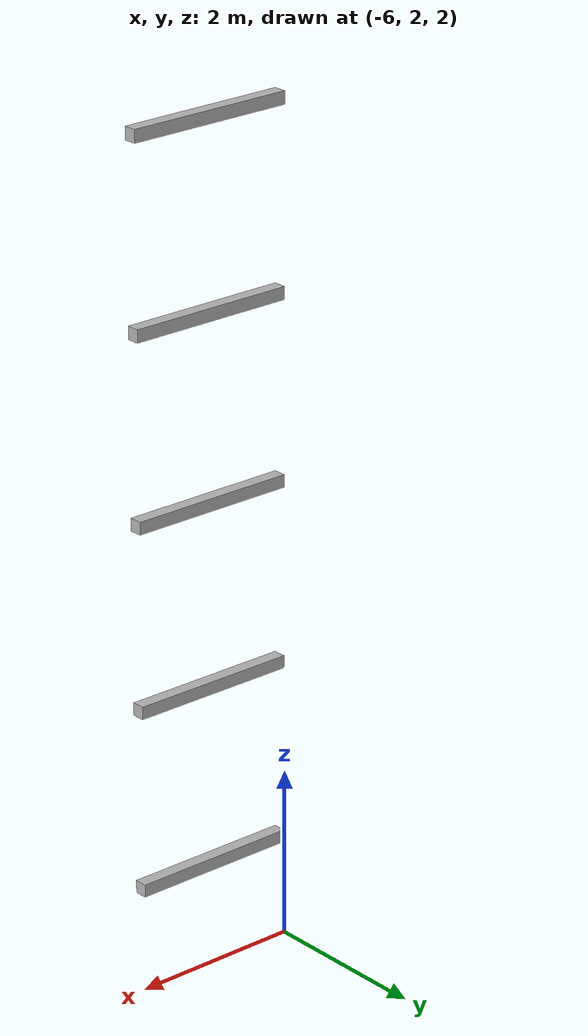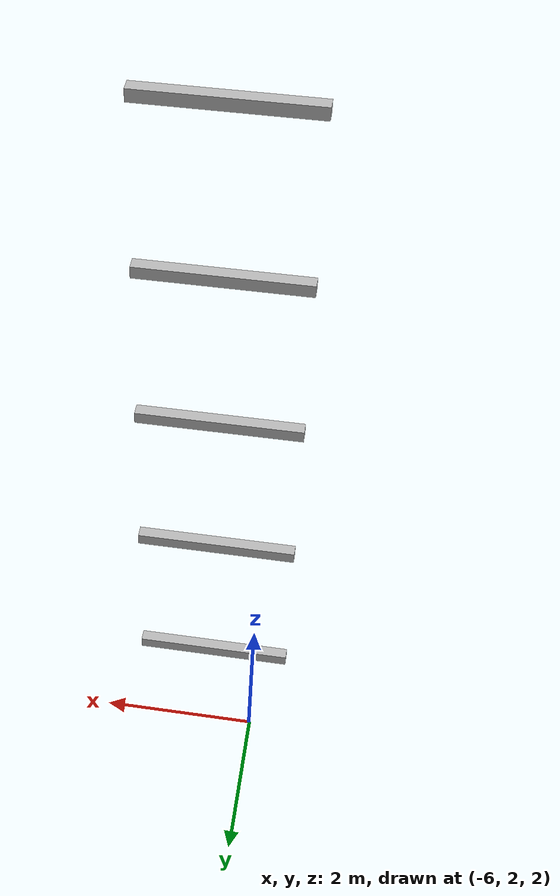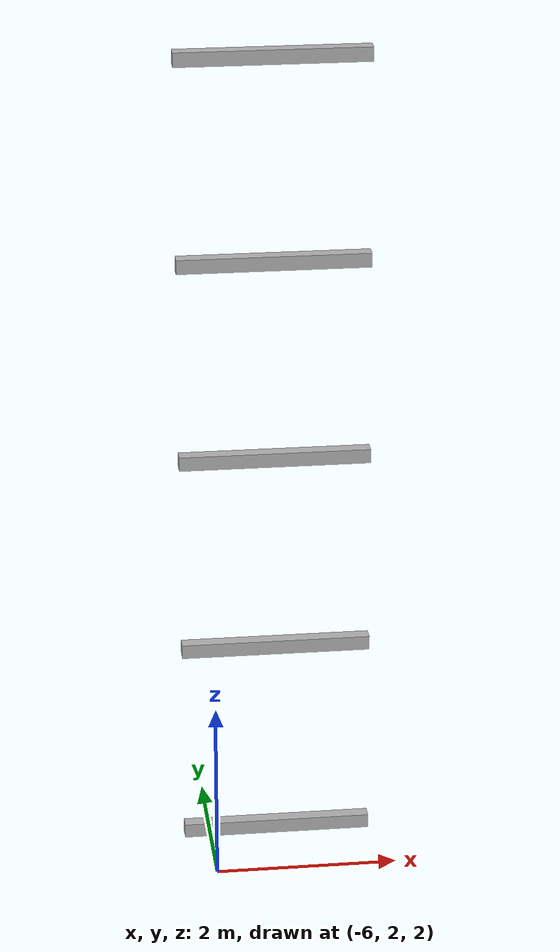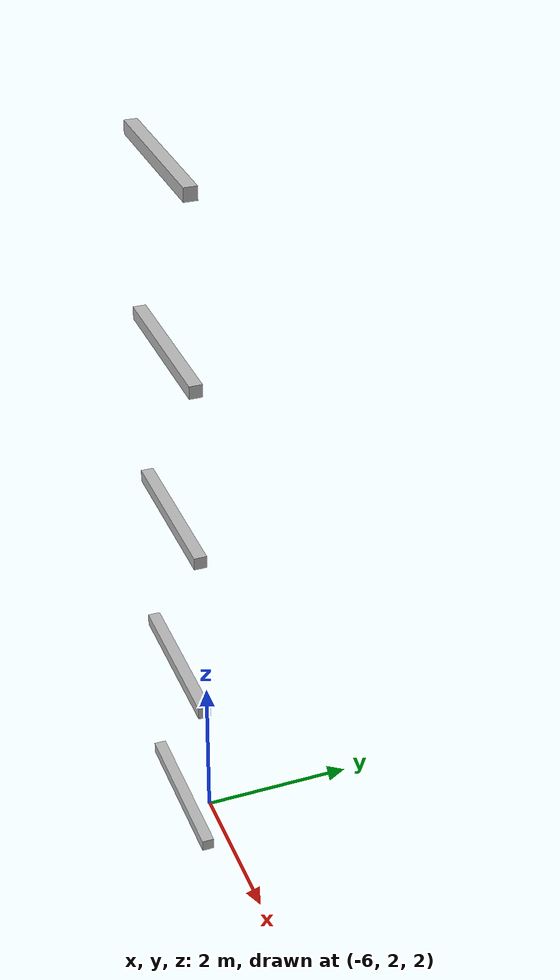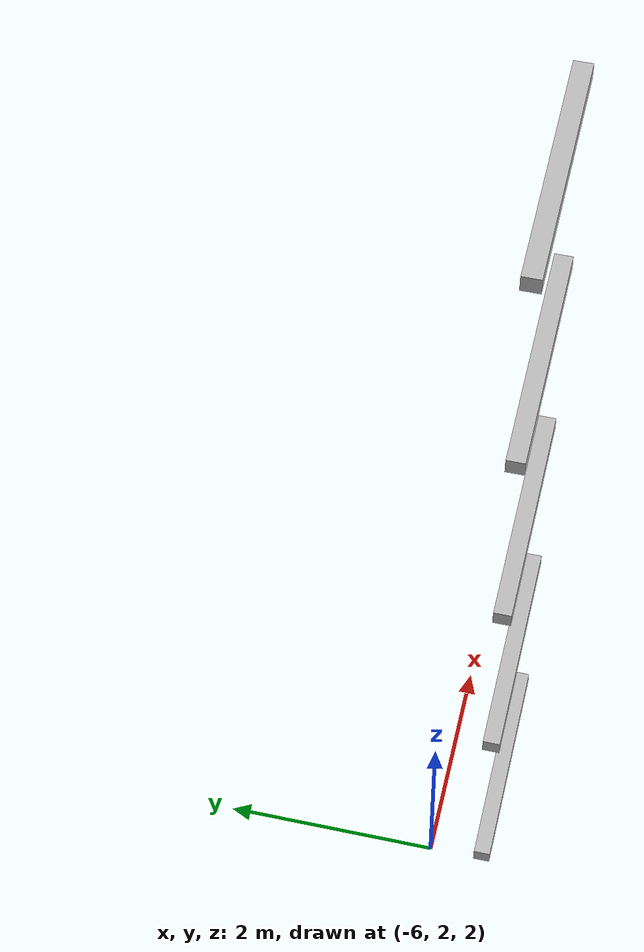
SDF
<sdf version="1.7">
 <world name="default">
  <model name="orthogonal_747_2.000.15_TS">
   <static>1</static>
   <link name="x_link_2_3_0">
    <inertial>
     <mass>1</mass>
     <inertia>
      <ixx>0.166667</ixx>
      <ixy>0</ixy>
      <ixz>0</ixz>
      <iyy>0.166667</iyy>
      <iyz>0</iyz>
      <izz>0.166667</izz>
     </inertia>
    </inertial>
    <pose>1.075 6.45 5.375 0 -0 0</pose>
    <visual name="visual_0">
     <laser_retro>2220</laser_retro>
     <geometry><box><size>2 1e-06 0.15</size></box></geometry>
     <material>
      <script><name>Gazebo/Grey</name><uri>file://media/materials/scripts/gazebo.material</uri></script>
      <shader type="pixel"><normal_map>__default__</normal_map></shader>
      <ambient>0.678 0.498 0.659 1</ambient>
      <diffuse>0.7 0.7 0.7 1</diffuse>
      <specular>0.01 0.01 0.01 1</specular>
      <emissive>0 0 0 1</emissive>
     </material>
     <pose>0 -0.075 0 0 -0 0</pose>
     <transparency>1</transparency>
    </visual>
    <visual name="visual_1">
     <laser_retro>2221</laser_retro>
     <geometry><box><size>2 1e-06 0.15</size></box></geometry>
     <material>
      <script><name>Gazebo/Grey</name><uri>file://media/materials/scripts/gazebo.material</uri></script>
      <shader type="pixel"><normal_map>__default__</normal_map></shader>
      <ambient>0.447 0.624 0.812 1</ambient>
      <diffuse>0.7 0.7 0.7 1</diffuse>
      <specular>0.01 0.01 0.01 1</specular>
      <emissive>0 0 0 1</emissive>
     </material>
     <pose>0 0.075 0 0 -0 0</pose>
     <transparency>1</transparency>
    </visual>
    <visual name="visual_2">
     <laser_retro>2222</laser_retro>
     <geometry><box><size>2 0.15 1e-06</size></box></geometry>
     <material>
      <script><name>Gazebo/Grey</name><uri>file://media/materials/scripts/gazebo.material</uri></script>
      <shader type="pixel"><normal_map>__default__</normal_map></shader>
      <ambient>0.988 0.686 0.243 1</ambient>
      <diffuse>0.7 0.7 0.7 1</diffuse>
      <specular>0.01 0.01 0.01 1</specular>
      <emissive>0 0 0 1</emissive>
     </material>
     <pose>0 0 -0.075 0 -0 0</pose>
     <transparency>1</transparency>
    </visual>
    <visual name="visual_3">
     <laser_retro>2223</laser_retro>
     <geometry><box><size>1e-06 0.15 0.15</size></box></geometry>
     <material>
      <script><name>Gazebo/Grey</name><uri>file://media/materials/scripts/gazebo.material</uri></script>
      <shader type="pixel"><normal_map>__default__</normal_map></shader>
      <ambient>0.988 0.914 0.31 1</ambient>
      <diffuse>0.7 0.7 0.7 1</diffuse>
      <specular>0.01 0.01 0.01 1</specular>
      <emissive>0 0 0 1</emissive>
     </material>
     <pose>1 0 0 0 -0 0</pose>
     <transparency>1</transparency>
    </visual>
    <visual name="visual_4">
     <laser_retro>2224</laser_retro>
     <geometry><box><size>2 0.15 1e-06</size></box></geometry>
     <material>
      <script><name>Gazebo/Grey</name><uri>file://media/materials/scripts/gazebo.material</uri></script>
      <shader type="pixel"><normal_map>__default__</normal_map></shader>
      <ambient>0.937 0.161 0.161 1</ambient>
      <diffuse>0.7 0.7 0.7 1</diffuse>
      <specular>0.01 0.01 0.01 1</specular>
      <emissive>0 0 0 1</emissive>
     </material>
     <pose>0 0 0.075 0 -0 0</pose>
     <transparency>1</transparency>
    </visual>
    <visual name="visual_5">
     <laser_retro>2225</laser_retro>
     <geometry><box><size>1e-06 0.15 0.15</size></box></geometry>
     <material>
      <script><name>Gazebo/Grey</name><uri>file://media/materials/scripts/gazebo.material</uri></script>
      <shader type="pixel"><normal_map>__default__</normal_map></shader>
      <ambient>0.541 0.886 0.204 1</ambient>
      <diffuse>0.7 0.7 0.7 1</diffuse>
      <specular>0.01 0.01 0.01 1</specular>
      <emissive>0 0 0 1</emissive>
     </material>
     <pose>-1 0 0 0 -0 0</pose>
     <transparency>1</transparency>
    </visual>
    <visual name="visual_texture">
     <geometry><box><size>1.9998 0.149985 0.149985</size></box></geometry>
     <material>
      <script>
       <uri>model://BASE_MODELS/simple_block_v2_textured/materials/scripts</uri>
       <uri>model://BASE_MODELS/simple_block_v2_textured/materials/textures</uri>
       <name>metal</name>
      </script>
     </material>
     <laser_retro>2226</laser_retro>
    </visual>
    <collision name="collision">
     <geometry><box><size>2 0.15 0.15</size></box></geometry>
     <surface>
      <friction>
       <ode><mu>1</mu><mu2>1</mu2><fdir1>0 0 0</fdir1><slip1>0</slip1><slip2>0</slip2></ode>
       <torsional>
        <coefficient>1</coefficient>
        <patch_radius>0</patch_radius>
        <surface_radius>0</surface_radius>
        <use_patch_radius>1</use_patch_radius>
        <ode><slip>0</slip></ode>
       </torsional>
      </friction>
      <bounce><restitution_coefficient>0</restitution_coefficient><threshold>1e+06</threshold></bounce>
      <contact>
       <collide_without_contact>0</collide_without_contact>
       <collide_without_contact_bitmask>1</collide_without_contact_bitmask>
       <collide_bitmask>1</collide_bitmask>
       <ode>
        <soft_cfm>0</soft_cfm>
        <soft_erp>0.2</soft_erp>
        <kp>1e+13</kp>
        <kd>1</kd>
        <max_vel>0.01</max_vel>
        <min_depth>0</min_depth>
       </ode>
       <bullet>
        <split_impulse>1</split_impulse>
        <split_impulse_penetration_threshold>-0.01</split_impulse_penetration_threshold>
        <soft_cfm>0</soft_cfm>
        <soft_erp>0.2</soft_erp>
        <kp>1e+13</kp>
        <kd>1</kd>
       </bullet>
      </contact>
     </surface>
    </collision>
   </link>
   <link name="x_link_3_3_0">
    <inertial>
     <mass>1</mass>
     <inertia>
      <ixx>0.166667</ixx>
      <ixy>0</ixy>
      <ixz>0</ixz>
      <iyy>0.166667</iyy>
      <iyz>0</iyz>
      <izz>0.166667</izz>
     </inertia>
    </inertial>
    <pose>1.075 6.45 7.525 0 -0 0</pose>
    <visual name="visual_0">
     <laser_retro>3123</laser_retro>
     <geometry><box><size>2 1e-06 0.15</size></box></geometry>
     <material>
      <script><name>Gazebo/Grey</name><uri>file://media/materials/scripts/gazebo.material</uri></script>
      <shader type="pixel"><normal_map>__default__</normal_map></shader>
      <ambient>0.678 0.498 0.659 1</ambient>
      <diffuse>0.7 0.7 0.7 1</diffuse>
      <specular>0.01 0.01 0.01 1</specular>
      <emissive>0 0 0 1</emissive>
     </material>
     <pose>0 -0.075 0 0 -0 0</pose>
     <transparency>1</transparency>
    </visual>
    <visual name="visual_1">
     <laser_retro>3124</laser_retro>
     <geometry><box><size>2 1e-06 0.15</size></box></geometry>
     <material>
      <script><name>Gazebo/Grey</name><uri>file://media/materials/scripts/gazebo.material</uri></script>
      <shader type="pixel"><normal_map>__default__</normal_map></shader>
      <ambient>0.447 0.624 0.812 1</ambient>
      <diffuse>0.7 0.7 0.7 1</diffuse>
      <specular>0.01 0.01 0.01 1</specular>
      <emissive>0 0 0 1</emissive>
     </material>
     <pose>0 0.075 0 0 -0 0</pose>
     <transparency>1</transparency>
    </visual>
    <visual name="visual_2">
     <laser_retro>3125</laser_retro>
     <geometry><box><size>2 0.15 1e-06</size></box></geometry>
     <material>
      <script><name>Gazebo/Grey</name><uri>file://media/materials/scripts/gazebo.material</uri></script>
      <shader type="pixel"><normal_map>__default__</normal_map></shader>
      <ambient>0.988 0.686 0.243 1</ambient>
      <diffuse>0.7 0.7 0.7 1</diffuse>
      <specular>0.01 0.01 0.01 1</specular>
      <emissive>0 0 0 1</emissive>
     </material>
     <pose>0 0 -0.075 0 -0 0</pose>
     <transparency>1</transparency>
    </visual>
    <visual name="visual_3">
     <laser_retro>3126</laser_retro>
     <geometry><box><size>1e-06 0.15 0.15</size></box></geometry>
     <material>
      <script><name>Gazebo/Grey</name><uri>file://media/materials/scripts/gazebo.material</uri></script>
      <shader type="pixel"><normal_map>__default__</normal_map></shader>
      <ambient>0.988 0.914 0.31 1</ambient>
      <diffuse>0.7 0.7 0.7 1</diffuse>
      <specular>0.01 0.01 0.01 1</specular>
      <emissive>0 0 0 1</emissive>
     </material>
     <pose>1 0 0 0 -0 0</pose>
     <transparency>1</transparency>
    </visual>
    <visual name="visual_4">
     <laser_retro>3127</laser_retro>
     <geometry><box><size>2 0.15 1e-06</size></box></geometry>
     <material>
      <script><name>Gazebo/Grey</name><uri>file://media/materials/scripts/gazebo.material</uri></script>
      <shader type="pixel"><normal_map>__default__</normal_map></shader>
      <ambient>0.937 0.161 0.161 1</ambient>
      <diffuse>0.7 0.7 0.7 1</diffuse>
      <specular>0.01 0.01 0.01 1</specular>
      <emissive>0 0 0 1</emissive>
     </material>
     <pose>0 0 0.075 0 -0 0</pose>
     <transparency>1</transparency>
    </visual>
    <visual name="visual_5">
     <laser_retro>3128</laser_retro>
     <geometry><box><size>1e-06 0.15 0.15</size></box></geometry>
     <material>
      <script><name>Gazebo/Grey</name><uri>file://media/materials/scripts/gazebo.material</uri></script>
      <shader type="pixel"><normal_map>__default__</normal_map></shader>
      <ambient>0.541 0.886 0.204 1</ambient>
      <diffuse>0.7 0.7 0.7 1</diffuse>
      <specular>0.01 0.01 0.01 1</specular>
      <emissive>0 0 0 1</emissive>
     </material>
     <pose>-1 0 0 0 -0 0</pose>
     <transparency>1</transparency>
    </visual>
    <visual name="visual_texture">
     <geometry><box><size>1.9998 0.149985 0.149985</size></box></geometry>
     <material>
      <script>
       <uri>model://BASE_MODELS/simple_block_v2_textured/materials/scripts</uri>
       <uri>model://BASE_MODELS/simple_block_v2_textured/materials/textures</uri>
       <name>metal</name>
      </script>
     </material>
     <laser_retro>3129</laser_retro>
    </visual>
    <collision name="collision">
     <geometry><box><size>2 0.15 0.15</size></box></geometry>
     <surface>
      <friction>
       <ode><mu>1</mu><mu2>1</mu2><fdir1>0 0 0</fdir1><slip1>0</slip1><slip2>0</slip2></ode>
       <torsional>
        <coefficient>1</coefficient>
        <patch_radius>0</patch_radius>
        <surface_radius>0</surface_radius>
        <use_patch_radius>1</use_patch_radius>
        <ode><slip>0</slip></ode>
       </torsional>
      </friction>
      <bounce><restitution_coefficient>0</restitution_coefficient><threshold>1e+06</threshold></bounce>
      <contact>
       <collide_without_contact>0</collide_without_contact>
       <collide_without_contact_bitmask>1</collide_without_contact_bitmask>
       <collide_bitmask>1</collide_bitmask>
       <ode>
        <soft_cfm>0</soft_cfm>
        <soft_erp>0.2</soft_erp>
        <kp>1e+13</kp>
        <kd>1</kd>
        <max_vel>0.01</max_vel>
        <min_depth>0</min_depth>
       </ode>
       <bullet>
        <split_impulse>1</split_impulse>
        <split_impulse_penetration_threshold>-0.01</split_impulse_penetration_threshold>
        <soft_cfm>0</soft_cfm>
        <soft_erp>0.2</soft_erp>
        <kp>1e+13</kp>
        <kd>1</kd>
       </bullet>
      </contact>
     </surface>
    </collision>
   </link>
   <link name="x_link_4_3_0">
    <inertial>
     <mass>1</mass>
     <inertia>
      <ixx>0.166667</ixx>
      <ixy>0</ixy>
      <ixz>0</ixz>
      <iyy>0.166667</iyy>
      <iyz>0</iyz>
      <izz>0.166667</izz>
     </inertia>
    </inertial>
    <pose>1.075 6.45 9.675 0 -0 0</pose>
    <visual name="visual_0">
     <laser_retro>4026</laser_retro>
     <geometry><box><size>2 1e-06 0.15</size></box></geometry>
     <material>
      <script><name>Gazebo/Grey</name><uri>file://media/materials/scripts/gazebo.material</uri></script>
      <shader type="pixel"><normal_map>__default__</normal_map></shader>
      <ambient>0.678 0.498 0.659 1</ambient>
      <diffuse>0.7 0.7 0.7 1</diffuse>
      <specular>0.01 0.01 0.01 1</specular>
      <emissive>0 0 0 1</emissive>
     </material>
     <pose>0 -0.075 0 0 -0 0</pose>
     <transparency>1</transparency>
    </visual>
    <visual name="visual_1">
     <laser_retro>4027</laser_retro>
     <geometry><box><size>2 1e-06 0.15</size></box></geometry>
     <material>
      <script><name>Gazebo/Grey</name><uri>file://media/materials/scripts/gazebo.material</uri></script>
      <shader type="pixel"><normal_map>__default__</normal_map></shader>
      <ambient>0.447 0.624 0.812 1</ambient>
      <diffuse>0.7 0.7 0.7 1</diffuse>
      <specular>0.01 0.01 0.01 1</specular>
      <emissive>0 0 0 1</emissive>
     </material>
     <pose>0 0.075 0 0 -0 0</pose>
     <transparency>1</transparency>
    </visual>
    <visual name="visual_2">
     <laser_retro>4028</laser_retro>
     <geometry><box><size>2 0.15 1e-06</size></box></geometry>
     <material>
      <script><name>Gazebo/Grey</name><uri>file://media/materials/scripts/gazebo.material</uri></script>
      <shader type="pixel"><normal_map>__default__</normal_map></shader>
      <ambient>0.988 0.686 0.243 1</ambient>
      <diffuse>0.7 0.7 0.7 1</diffuse>
      <specular>0.01 0.01 0.01 1</specular>
      <emissive>0 0 0 1</emissive>
     </material>
     <pose>0 0 -0.075 0 -0 0</pose>
     <transparency>1</transparency>
    </visual>
    <visual name="visual_3">
     <laser_retro>4029</laser_retro>
     <geometry><box><size>1e-06 0.15 0.15</size></box></geometry>
     <material>
      <script><name>Gazebo/Grey</name><uri>file://media/materials/scripts/gazebo.material</uri></script>
      <shader type="pixel"><normal_map>__default__</normal_map></shader>
      <ambient>0.988 0.914 0.31 1</ambient>
      <diffuse>0.7 0.7 0.7 1</diffuse>
      <specular>0.01 0.01 0.01 1</specular>
      <emissive>0 0 0 1</emissive>
     </material>
     <pose>1 0 0 0 -0 0</pose>
     <transparency>1</transparency>
    </visual>
    <visual name="visual_4">
     <laser_retro>4030</laser_retro>
     <geometry><box><size>2 0.15 1e-06</size></box></geometry>
     <material>
      <script><name>Gazebo/Grey</name><uri>file://media/materials/scripts/gazebo.material</uri></script>
      <shader type="pixel"><normal_map>__default__</normal_map></shader>
      <ambient>0.937 0.161 0.161 1</ambient>
      <diffuse>0.7 0.7 0.7 1</diffuse>
      <specular>0.01 0.01 0.01 1</specular>
      <emissive>0 0 0 1</emissive>
     </material>
     <pose>0 0 0.075 0 -0 0</pose>
     <transparency>1</transparency>
    </visual>
    <visual name="visual_5">
     <laser_retro>4031</laser_retro>
     <geometry><box><size>1e-06 0.15 0.15</size></box></geometry>
     <material>
      <script><name>Gazebo/Grey</name><uri>file://media/materials/scripts/gazebo.material</uri></script>
      <shader type="pixel"><normal_map>__default__</normal_map></shader>
      <ambient>0.541 0.886 0.204 1</ambient>
      <diffuse>0.7 0.7 0.7 1</diffuse>
      <specular>0.01 0.01 0.01 1</specular>
      <emissive>0 0 0 1</emissive>
     </material>
     <pose>-1 0 0 0 -0 0</pose>
     <transparency>1</transparency>
    </visual>
    <visual name="visual_texture">
     <geometry><box><size>1.9998 0.149985 0.149985</size></box></geometry>
     <material>
      <script>
       <uri>model://BASE_MODELS/simple_block_v2_textured/materials/scripts</uri>
       <uri>model://BASE_MODELS/simple_block_v2_textured/materials/textures</uri>
       <name>metal</name>
      </script>
     </material>
     <laser_retro>4032</laser_retro>
    </visual>
    <collision name="collision">
     <geometry><box><size>2 0.15 0.15</size></box></geometry>
     <surface>
      <friction>
       <ode><mu>1</mu><mu2>1</mu2><fdir1>0 0 0</fdir1><slip1>0</slip1><slip2>0</slip2></ode>
       <torsional>
        <coefficient>1</coefficient>
        <patch_radius>0</patch_radius>
        <surface_radius>0</surface_radius>
        <use_patch_radius>1</use_patch_radius>
        <ode><slip>0</slip></ode>
       </torsional>
      </friction>
      <bounce><restitution_coefficient>0</restitution_coefficient><threshold>1e+06</threshold></bounce>
      <contact>
       <collide_without_contact>0</collide_without_contact>
       <collide_without_contact_bitmask>1</collide_without_contact_bitmask>
       <collide_bitmask>1</collide_bitmask>
       <ode>
        <soft_cfm>0</soft_cfm>
        <soft_erp>0.2</soft_erp>
        <kp>1e+13</kp>
        <kd>1</kd>
        <max_vel>0.01</max_vel>
        <min_depth>0</min_depth>
       </ode>
       <bullet>
        <split_impulse>1</split_impulse>
        <split_impulse_penetration_threshold>-0.01</split_impulse_penetration_threshold>
        <soft_cfm>0</soft_cfm>
        <soft_erp>0.2</soft_erp>
        <kp>1e+13</kp>
        <kd>1</kd>
       </bullet>
      </contact>
     </surface>
    </collision>
   </link>
   <link name="x_link_5_3_0">
    <inertial>
     <mass>1</mass>
     <inertia>
      <ixx>0.166667</ixx>
      <ixy>0</ixy>
      <ixz>0</ixz>
      <iyy>0.166667</iyy>
      <iyz>0</iyz>
      <izz>0.166667</izz>
     </inertia>
    </inertial>
    <pose>1.075 6.45 11.825 0 -0 0</pose>
    <visual name="visual_0">
     <laser_retro>4929</laser_retro>
     <geometry><box><size>2 1e-06 0.15</size></box></geometry>
     <material>
      <script><name>Gazebo/Grey</name><uri>file://media/materials/scripts/gazebo.material</uri></script>
      <shader type="pixel"><normal_map>__default__</normal_map></shader>
      <ambient>0.678 0.498 0.659 1</ambient>
      <diffuse>0.7 0.7 0.7 1</diffuse>
      <specular>0.01 0.01 0.01 1</specular>
      <emissive>0 0 0 1</emissive>
     </material>
     <pose>0 -0.075 0 0 -0 0</pose>
     <transparency>1</transparency>
    </visual>
    <visual name="visual_1">
     <laser_retro>4930</laser_retro>
     <geometry><box><size>2 1e-06 0.15</size></box></geometry>
     <material>
      <script><name>Gazebo/Grey</name><uri>file://media/materials/scripts/gazebo.material</uri></script>
      <shader type="pixel"><normal_map>__default__</normal_map></shader>
      <ambient>0.447 0.624 0.812 1</ambient>
      <diffuse>0.7 0.7 0.7 1</diffuse>
      <specular>0.01 0.01 0.01 1</specular>
      <emissive>0 0 0 1</emissive>
     </material>
     <pose>0 0.075 0 0 -0 0</pose>
     <transparency>1</transparency>
    </visual>
    <visual name="visual_2">
     <laser_retro>4931</laser_retro>
     <geometry><box><size>2 0.15 1e-06</size></box></geometry>
     <material>
      <script><name>Gazebo/Grey</name><uri>file://media/materials/scripts/gazebo.material</uri></script>
      <shader type="pixel"><normal_map>__default__</normal_map></shader>
      <ambient>0.988 0.686 0.243 1</ambient>
      <diffuse>0.7 0.7 0.7 1</diffuse>
      <specular>0.01 0.01 0.01 1</specular>
      <emissive>0 0 0 1</emissive>
     </material>
     <pose>0 0 -0.075 0 -0 0</pose>
     <transparency>1</transparency>
    </visual>
    <visual name="visual_3">
     <laser_retro>4932</laser_retro>
     <geometry><box><size>1e-06 0.15 0.15</size></box></geometry>
     <material>
      <script><name>Gazebo/Grey</name><uri>file://media/materials/scripts/gazebo.material</uri></script>
      <shader type="pixel"><normal_map>__default__</normal_map></shader>
      <ambient>0.988 0.914 0.31 1</ambient>
      <diffuse>0.7 0.7 0.7 1</diffuse>
      <specular>0.01 0.01 0.01 1</specular>
      <emissive>0 0 0 1</emissive>
     </material>
     <pose>1 0 0 0 -0 0</pose>
     <transparency>1</transparency>
    </visual>
    <visual name="visual_4">
     <laser_retro>4933</laser_retro>
     <geometry><box><size>2 0.15 1e-06</size></box></geometry>
     <material>
      <script><name>Gazebo/Grey</name><uri>file://media/materials/scripts/gazebo.material</uri></script>
      <shader type="pixel"><normal_map>__default__</normal_map></shader>
      <ambient>0.937 0.161 0.161 1</ambient>
      <diffuse>0.7 0.7 0.7 1</diffuse>
      <specular>0.01 0.01 0.01 1</specular>
      <emissive>0 0 0 1</emissive>
     </material>
     <pose>0 0 0.075 0 -0 0</pose>
     <transparency>1</transparency>
    </visual>
    <visual name="visual_5">
     <laser_retro>4934</laser_retro>
     <geometry><box><size>1e-06 0.15 0.15</size></box></geometry>
     <material>
      <script><name>Gazebo/Grey</name><uri>file://media/materials/scripts/gazebo.material</uri></script>
      <shader type="pixel"><normal_map>__default__</normal_map></shader>
      <ambient>0.541 0.886 0.204 1</ambient>
      <diffuse>0.7 0.7 0.7 1</diffuse>
      <specular>0.01 0.01 0.01 1</specular>
      <emissive>0 0 0 1</emissive>
     </material>
     <pose>-1 0 0 0 -0 0</pose>
     <transparency>1</transparency>
    </visual>
    <visual name="visual_texture">
     <geometry><box><size>1.9998 0.149985 0.149985</size></box></geometry>
     <material>
      <script>
       <uri>model://BASE_MODELS/simple_block_v2_textured/materials/scripts</uri>
       <uri>model://BASE_MODELS/simple_block_v2_textured/materials/textures</uri>
       <name>metal</name>
      </script>
     </material>
     <laser_retro>4935</laser_retro>
    </visual>
    <collision name="collision">
     <geometry><box><size>2 0.15 0.15</size></box></geometry>
     <surface>
      <friction>
       <ode><mu>1</mu><mu2>1</mu2><fdir1>0 0 0</fdir1><slip1>0</slip1><slip2>0</slip2></ode>
       <torsional>
        <coefficient>1</coefficient>
        <patch_radius>0</patch_radius>
        <surface_radius>0</surface_radius>
        <use_patch_radius>1</use_patch_radius>
        <ode><slip>0</slip></ode>
       </torsional>
      </friction>
      <bounce><restitution_coefficient>0</restitution_coefficient><threshold>1e+06</threshold></bounce>
      <contact>
       <collide_without_contact>0</collide_without_contact>
       <collide_without_contact_bitmask>1</collide_without_contact_bitmask>
       <collide_bitmask>1</collide_bitmask>
       <ode>
        <soft_cfm>0</soft_cfm>
        <soft_erp>0.2</soft_erp>
        <kp>1e+13</kp>
        <kd>1</kd>
        <max_vel>0.01</max_vel>
        <min_depth>0</min_depth>
       </ode>
       <bullet>
        <split_impulse>1</split_impulse>
        <split_impulse_penetration_threshold>-0.01</split_impulse_penetration_threshold>
        <soft_cfm>0</soft_cfm>
        <soft_erp>0.2</soft_erp>
        <kp>1e+13</kp>
        <kd>1</kd>
       </bullet>
      </contact>
     </surface>
    </collision>
   </link>
   <link name="x_link_6_3_0">
    <inertial>
     <mass>1</mass>
     <inertia>
      <ixx>0.166667</ixx>
      <ixy>0</ixy>
      <ixz>0</ixz>
      <iyy>0.166667</iyy>
      <iyz>0</iyz>
      <izz>0.166667</izz>
     </inertia>
    </inertial>
    <pose>1.075 6.45 13.975 0 -0 0</pose>
    <visual name="visual_0">
     <laser_retro>5916</laser_retro>
     <geometry><box><size>2 1e-06 0.15</size></box></geometry>
     <material>
      <script><name>Gazebo/Grey</name><uri>file://media/materials/scripts/gazebo.material</uri></script>
      <shader type="pixel"><normal_map>__default__</normal_map></shader>
      <ambient>0.678 0.498 0.659 1</ambient>
      <diffuse>0.7 0.7 0.7 1</diffuse>
      <specular>0.01 0.01 0.01 1</specular>
      <emissive>0 0 0 1</emissive>
     </material>
     <pose>0 -0.075 0 0 -0 0</pose>
     <transparency>1</transparency>
    </visual>
    <visual name="visual_1">
     <laser_retro>5917</laser_retro>
     <geometry><box><size>2 1e-06 0.15</size></box></geometry>
     <material>
      <script><name>Gazebo/Grey</name><uri>file://media/materials/scripts/gazebo.material</uri></script>
      <shader type="pixel"><normal_map>__default__</normal_map></shader>
      <ambient>0.447 0.624 0.812 1</ambient>
      <diffuse>0.7 0.7 0.7 1</diffuse>
      <specular>0.01 0.01 0.01 1</specular>
      <emissive>0 0 0 1</emissive>
     </material>
     <pose>0 0.075 0 0 -0 0</pose>
     <transparency>1</transparency>
    </visual>
    <visual name="visual_2">
     <laser_retro>5918</laser_retro>
     <geometry><box><size>2 0.15 1e-06</size></box></geometry>
     <material>
      <script><name>Gazebo/Grey</name><uri>file://media/materials/scripts/gazebo.material</uri></script>
      <shader type="pixel"><normal_map>__default__</normal_map></shader>
      <ambient>0.988 0.686 0.243 1</ambient>
      <diffuse>0.7 0.7 0.7 1</diffuse>
      <specular>0.01 0.01 0.01 1</specular>
      <emissive>0 0 0 1</emissive>
     </material>
     <pose>0 0 -0.075 0 -0 0</pose>
     <transparency>1</transparency>
    </visual>
    <visual name="visual_3">
     <laser_retro>5919</laser_retro>
     <geometry><box><size>1e-06 0.15 0.15</size></box></geometry>
     <material>
      <script><name>Gazebo/Grey</name><uri>file://media/materials/scripts/gazebo.material</uri></script>
      <shader type="pixel"><normal_map>__default__</normal_map></shader>
      <ambient>0.988 0.914 0.31 1</ambient>
      <diffuse>0.7 0.7 0.7 1</diffuse>
      <specular>0.01 0.01 0.01 1</specular>
      <emissive>0 0 0 1</emissive>
     </material>
     <pose>1 0 0 0 -0 0</pose>
     <transparency>1</transparency>
    </visual>
    <visual name="visual_4">
     <laser_retro>5920</laser_retro>
     <geometry><box><size>2 0.15 1e-06</size></box></geometry>
     <material>
      <script><name>Gazebo/Grey</name><uri>file://media/materials/scripts/gazebo.material</uri></script>
      <shader type="pixel"><normal_map>__default__</normal_map></shader>
      <ambient>0.937 0.161 0.161 1</ambient>
      <diffuse>0.7 0.7 0.7 1</diffuse>
      <specular>0.01 0.01 0.01 1</specular>
      <emissive>0 0 0 1</emissive>
     </material>
     <pose>0 0 0.075 0 -0 0</pose>
     <transparency>1</transparency>
    </visual>
    <visual name="visual_5">
     <laser_retro>5921</laser_retro>
     <geometry><box><size>1e-06 0.15 0.15</size></box></geometry>
     <material>
      <script><name>Gazebo/Grey</name><uri>file://media/materials/scripts/gazebo.material</uri></script>
      <shader type="pixel"><normal_map>__default__</normal_map></shader>
      <ambient>0.541 0.886 0.204 1</ambient>
      <diffuse>0.7 0.7 0.7 1</diffuse>
      <specular>0.01 0.01 0.01 1</specular>
      <emissive>0 0 0 1</emissive>
     </material>
     <pose>-1 0 0 0 -0 0</pose>
     <transparency>1</transparency>
    </visual>
    <visual name="visual_texture">
     <geometry><box><size>1.9998 0.149985 0.149985</size></box></geometry>
     <material>
      <script>
       <uri>model://BASE_MODELS/simple_block_v2_textured/materials/scripts</uri>
       <uri>model://BASE_MODELS/simple_block_v2_textured/materials/textures</uri>
       <name>metal</name>
      </script>
     </material>
     <laser_retro>5922</laser_retro>
    </visual>
    <collision name="collision">
     <geometry><box><size>2 0.15 0.15</size></box></geometry>
     <surface>
      <friction>
       <ode><mu>1</mu><mu2>1</mu2><fdir1>0 0 0</fdir1><slip1>0</slip1><slip2>0</slip2></ode>
       <torsional>
        <coefficient>1</coefficient>
        <patch_radius>0</patch_radius>
        <surface_radius>0</surface_radius>
        <use_patch_radius>1</use_patch_radius>
        <ode><slip>0</slip></ode>
       </torsional>
      </friction>
      <bounce><restitution_coefficient>0</restitution_coefficient><threshold>1e+06</threshold></bounce>
      <contact>
       <collide_without_contact>0</collide_without_contact>
       <collide_without_contact_bitmask>1</collide_without_contact_bitmask>
       <collide_bitmask>1</collide_bitmask>
       <ode>
        <soft_cfm>0</soft_cfm>
        <soft_erp>0.2</soft_erp>
        <kp>1e+13</kp>
        <kd>1</kd>
        <max_vel>0.01</max_vel>
        <min_depth>0</min_depth>
       </ode>
       <bullet>
        <split_impulse>1</split_impulse>
        <split_impulse_penetration_threshold>-0.01</split_impulse_penetration_threshold>
        <soft_cfm>0</soft_cfm>
        <soft_erp>0.2</soft_erp>
        <kp>1e+13</kp>
        <kd>1</kd>
       </bullet>
      </contact>
     </surface>
    </collision>
   </link>
   <pose>-6.47624 -5 -2.5 0 -0 0</pose>
  </model>
 </world>
</sdf>
